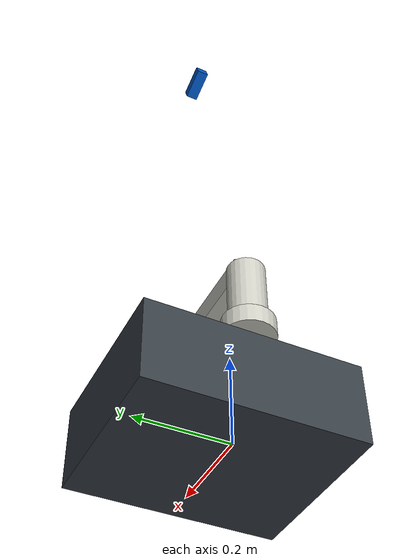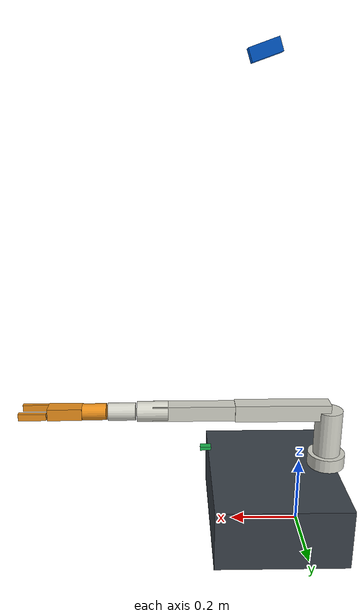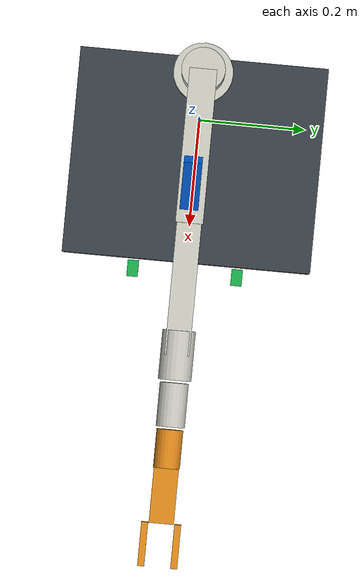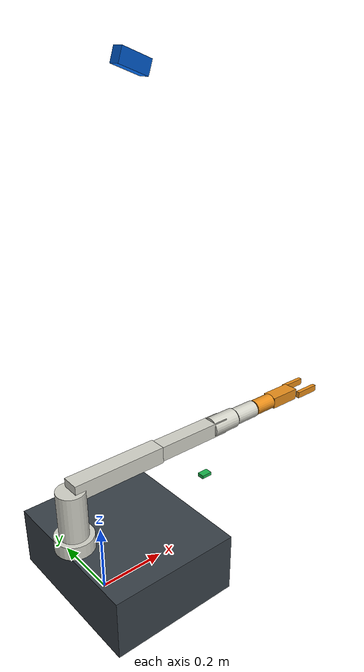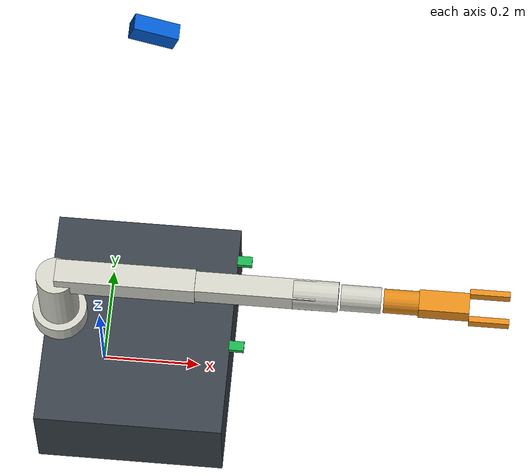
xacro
<?xml version="1.0"?>
<robot xmlns:xacro="http://www.ros.org/wiki/xacro" name="mobile_pick_place_dummy">

  <xacro:property name="base_length" value="0.38"/>    <!-- [m] Chassislaenge -->
  <xacro:property name="base_width"  value="0.46"/>    <!-- [m] maximale Breite -->
  <xacro:property name="base_center_x" value="0.08"/>
  <xacro:property name="base_height" value="0.18"/>    <!-- [m] Plattformhoehe -->

  <!-- [GEMESSEN 13.07.2026] MUSS mit base_hardware_params.yaml uebereinstimmen! -->
  <xacro:property name="wheel_radius"     value="0.0625"/>  <!-- Ø 125 mm -->
  <xacro:property name="wheel_width"      value="0.040"/>   <!-- [ANPASSEN] -->
  <xacro:property name="wheel_separation" value="0.378"/>   <!-- Radmitte-Radmitte -->
  <!-- Getriebe 10:1 steht in base_hardware_params.yaml (gear_ratio) -->

  <xacro:property name="wheel_x"          value="0.000"/>

  <xacro:property name="oak_x"     value="0.150"/>
  <xacro:property name="oak_y"     value="0.000"/>
  <xacro:property name="oak_z"     value="1.250"/>
  <xacro:property name="oak_yaw"   value="0.000"/>
  <xacro:property name="oak_pitch" value="0.3306"/> <!-- 18.94 Grad, nachgemessen 27.07.2026 -->
  <xacro:property name="oak_roll"  value="0.000"/>

  <xacro:property name="vl53_x"          value="0.290"/>
  <xacro:property name="vl53_y_abs"      value="0.095"/>
  <xacro:property name="vl53_z"          value="0.215"/>
  <xacro:property name="vl53_inward_yaw" value="0.000"/>  <!-- geradeaus, nicht eingedreht -->

  <xacro:property name="arm_base_x" value="-0.080"/>
  <xacro:property name="arm_base_y" value="0.000"/>
  <xacro:property name="arm_base_z" value="0.120"/>
  <xacro:property name="link1_h" value="0.160"/>
  <xacro:property name="link2_l" value="0.280"/>
  <xacro:property name="link3_l" value="0.240"/>
  <xacro:property name="wrist1_l" value="0.090"/>
  <xacro:property name="wrist2_l" value="0.080"/>
  <xacro:property name="tool_l"   value="0.070"/>

  <xacro:property name="gripper_len" value="0.100"/>
  <xacro:property name="finger_gap"  value="0.060"/>
  <xacro:property name="finger_len"  value="0.080"/>

  <!-- ================================================================
       Kleine Hilfs-Makros fuer visuelle Dummy-Geometrien
       ================================================================ -->
  <xacro:macro name="box_link" params="name size color">
    <link name="${name}">
      <visual>
        <geometry><box size="${size}"/></geometry>
        <material name="${color}"/>
      </visual>
      <collision>
        <geometry><box size="${size}"/></geometry>
      </collision>
    </link>
  </xacro:macro>

  <xacro:macro name="cylinder_link" params="name radius length color rpy:='0 0 0'">
    <link name="${name}">
      <visual>
        <origin rpy="${rpy}" xyz="0 0 0"/>
        <geometry><cylinder radius="${radius}" length="${length}"/></geometry>
        <material name="${color}"/>
      </visual>
      <collision>
        <origin rpy="${rpy}" xyz="0 0 0"/>
        <geometry><cylinder radius="${radius}" length="${length}"/></geometry>
      </collision>
    </link>
  </xacro:macro>

  <!-- Farben -->
  <material name="mat_base"><color rgba="0.22 0.25 0.28 1.0"/></material>
  <material name="mat_wheel"><color rgba="0.03 0.03 0.03 1.0"/></material>
  <material name="mat_sensor"><color rgba="0.00 0.35 0.80 1.0"/></material>
  <material name="mat_vl53"><color rgba="0.10 0.70 0.30 1.0"/></material>
  <material name="mat_arm"><color rgba="0.82 0.82 0.78 1.0"/></material>
  <material name="mat_tool"><color rgba="0.90 0.55 0.10 1.0"/></material>

  <!-- ================================================================
       BASIS / RAEder / SENSOR-FRAMES
       ================================================================ -->
  <link name="base_footprint"/>

  <joint name="base_footprint_to_base_link" type="fixed">
    <parent link="base_footprint"/>
    <child link="base_link"/>
    <origin xyz="0 0 ${base_height/2.0}" rpy="0 0 0"/>
  </joint>

  <link name="base_link">
    <visual>
      <origin xyz="${base_center_x} 0 0" rpy="0 0 0"/>
      <geometry><box size="${base_length} ${base_width} ${base_height}"/></geometry>
      <material name="mat_base"/>
    </visual>
    <collision>
      <origin xyz="${base_center_x} 0 0" rpy="0 0 0"/>
      <geometry><box size="${base_length} ${base_width} ${base_height}"/></geometry>
    </collision>
  </link>

  <!-- Linkes/rechtes Rad: Cylinder-Achse per rpy um X gedreht -> Achse entlang Y. -->
  <xacro:cylinder_link name="left_wheel_link" radius="${wheel_radius}" length="${wheel_width}" color="mat_wheel" rpy="1.57079632679 0 0"/>
  <joint name="left_wheel_joint" type="continuous">
    <parent link="base_link"/>
    <child link="left_wheel_link"/>
    <origin xyz="${wheel_x} ${wheel_separation/2.0} ${-base_height/2.0 + wheel_radius}" rpy="0 0 0"/>
    <axis xyz="0 1 0"/>
  </joint>

  <xacro:cylinder_link name="right_wheel_link" radius="${wheel_radius}" length="${wheel_width}" color="mat_wheel" rpy="1.57079632679 0 0"/>
  <joint name="right_wheel_joint" type="continuous">
    <parent link="base_link"/>
    <child link="right_wheel_link"/>
    <origin xyz="${wheel_x} ${(-wheel_separation)/2.0} ${(-base_height)/2.0 + wheel_radius}" rpy="0 0 0"/>
    <axis xyz="0 1 0"/>
  </joint>

  <!-- OAK-Kamera: mechanical frame + optical frame. -->
  <xacro:box_link name="camera_link" size="0.080 0.030 0.035" color="mat_sensor"/>
  <joint name="base_to_camera" type="fixed">
    <parent link="base_link"/>
    <child link="camera_link"/>
    <origin xyz="${oak_x} ${oak_y} ${oak_z}" rpy="${oak_roll} ${oak_pitch} ${oak_yaw}"/>
  </joint>

  <link name="camera_rgb_optical_frame"/>
  <joint name="camera_to_rgb_optical" type="fixed">
    <parent link="camera_link"/>
    <child link="camera_rgb_optical_frame"/>
    <!-- ROS-Standard: optical frame z nach vorne, x nach rechts, y nach unten. -->
    <origin xyz="0 0 0" rpy="-1.57079632679 0 -1.57079632679"/>
  </joint>

  <!-- VL53 links/rechts, zur Mitte eingedreht. -->
  <xacro:box_link name="vl53_left_link" size="0.030 0.020 0.010" color="mat_vl53"/>
  <joint name="base_to_vl53_left" type="fixed">
    <parent link="base_link"/>
    <child link="vl53_left_link"/>
    <origin xyz="${vl53_x} ${vl53_y_abs} ${vl53_z}" rpy="0 0 ${(-vl53_inward_yaw)}"/>
  </joint>

  <xacro:box_link name="vl53_right_link" size="0.030 0.020 0.010" color="mat_vl53"/>
  <joint name="base_to_vl53_right" type="fixed">
    <parent link="base_link"/>
    <child link="vl53_right_link"/>
    <origin xyz="${vl53_x} ${(-vl53_y_abs)} ${vl53_z}" rpy="0 0 ${vl53_inward_yaw}"/>
  </joint>

  <xacro:cylinder_link name="arm_base_link" radius="0.055" length="0.040" color="mat_arm"/>
  <joint name="base_to_arm_base" type="fixed">
    <parent link="base_link"/>
    <child link="arm_base_link"/>
    <origin xyz="${arm_base_x} ${arm_base_y} ${arm_base_z}" rpy="0 0 0"/>
  </joint>

  <xacro:cylinder_link name="link1" radius="0.040" length="${link1_h}" color="mat_arm"/>
  <joint name="joint1" type="revolute">
    <parent link="arm_base_link"/>
    <child link="link1"/>
    <origin xyz="0 0 ${link1_h/2.0}" rpy="0 0 0"/>
    <axis xyz="0 0 1"/>
    <limit lower="-2.61799" upper="2.61799" effort="20" velocity="1.0"/>
  </joint>

  <link name="link2">
    <visual>
      <origin xyz="${link2_l/2.0} 0 0" rpy="0 0 0"/>
      <geometry><box size="${link2_l} 0.050 0.050"/></geometry>
      <material name="mat_arm"/>
    </visual>
    <collision>
      <origin xyz="${link2_l/2.0} 0 0" rpy="0 0 0"/>
      <geometry><box size="${link2_l} 0.050 0.050"/></geometry>
    </collision>
  </link>
  <joint name="joint2" type="revolute">
    <parent link="link1"/>
    <child link="link2"/>
    <origin xyz="0 0 ${link1_h/2.0}" rpy="0 0 0"/>
    <axis xyz="0 1 0"/>
    <limit lower="-2.61799" upper="2.61799" effort="25" velocity="0.8"/>
  </joint>

  <link name="link3">
    <visual>
      <origin xyz="${link3_l/2.0} 0 0" rpy="0 0 0"/>
      <geometry><box size="${link3_l} 0.045 0.045"/></geometry>
      <material name="mat_arm"/>
    </visual>
    <collision>
      <origin xyz="${link3_l/2.0} 0 0" rpy="0 0 0"/>
      <geometry><box size="${link3_l} 0.045 0.045"/></geometry>
    </collision>
  </link>
  <joint name="joint3" type="revolute">
    <parent link="link2"/>
    <child link="link3"/>
    <origin xyz="${link2_l} 0 0" rpy="0 0 0"/>
    <axis xyz="0 1 0"/>
    <limit lower="-2.61799" upper="2.61799" effort="20" velocity="0.8"/>
  </joint>

  <xacro:cylinder_link name="link4" radius="0.030" length="${wrist1_l}" color="mat_arm" rpy="0 1.57079632679 0"/>
  <joint name="joint4" type="revolute">
    <parent link="link3"/>
    <child link="link4"/>
    <origin xyz="${link3_l} 0 0" rpy="0 0 0"/>
    <axis xyz="1 0 0"/>
    <limit lower="-2.61799" upper="2.61799" effort="10" velocity="1.2"/>
  </joint>

  <xacro:cylinder_link name="link5" radius="0.026" length="${wrist2_l}" color="mat_arm" rpy="0 1.57079632679 0"/>
  <joint name="joint5" type="revolute">
    <parent link="link4"/>
    <child link="link5"/>
    <origin xyz="${wrist1_l} 0 0" rpy="0 0 0"/>
    <axis xyz="0 1 0"/>
    <limit lower="-2.61799" upper="2.61799" effort="10" velocity="1.2"/>
  </joint>

  <xacro:cylinder_link name="link6" radius="0.024" length="${tool_l}" color="mat_tool" rpy="0 1.57079632679 0"/>
  <joint name="joint6" type="revolute">
    <parent link="link5"/>
    <child link="link6"/>
    <origin xyz="${wrist2_l} 0 0" rpy="0 0 0"/>
    <axis xyz="1 0 0"/>
    <limit lower="-2.61799" upper="2.61799" effort="8" velocity="1.5"/>
  </joint>

  <!-- ================================================================
       GREIFER / TCP
       ================================================================ -->
  <link name="tool0"/>
  <joint name="joint6_to_tool0" type="fixed">
    <parent link="link6"/>
    <child link="tool0"/>
    <origin xyz="${tool_l/2.0} 0 0" rpy="0 0 0"/>
  </joint>

  <link name="gripper_base_link">
    <visual>
      <origin xyz="${gripper_len/2.0} 0 0"/>
      <geometry><box size="${gripper_len} 0.045 0.035"/></geometry>
      <material name="mat_tool"/>
    </visual>
  </link>
  <joint name="tool0_to_gripper_base" type="fixed">
    <parent link="tool0"/>
    <child link="gripper_base_link"/>
    <origin xyz="0 0 0" rpy="0 0 0"/>
  </joint>

  <link name="left_finger_link">
    <visual>
      <origin xyz="${finger_len/2.0} 0 0"/>
      <geometry><box size="${finger_len} 0.012 0.020"/></geometry>
      <material name="mat_tool"/>
    </visual>
  </link>
  <joint name="left_finger_fixed" type="fixed">
    <parent link="gripper_base_link"/>
    <child link="left_finger_link"/>
    <origin xyz="${gripper_len} ${finger_gap/2.0} 0" rpy="0 0 0"/>
  </joint>

  <link name="right_finger_link">
    <visual>
      <origin xyz="${finger_len/2.0} 0 0"/>
      <geometry><box size="${finger_len} 0.012 0.020"/></geometry>
      <material name="mat_tool"/>
    </visual>
  </link>
  <joint name="right_finger_fixed" type="fixed">
    <parent link="gripper_base_link"/>
    <child link="right_finger_link"/>
    <origin xyz="${gripper_len} ${(-finger_gap)/2.0} 0" rpy="0 0 0"/>
  </joint>

  <link name="gripper_tcp"/>
  <joint name="gripper_base_to_tcp" type="fixed">
    <parent link="gripper_base_link"/>
    <child link="gripper_tcp"/>
    <origin xyz="${gripper_len + finger_len} 0 0" rpy="0 0 0"/>
  </joint>

</robot>
